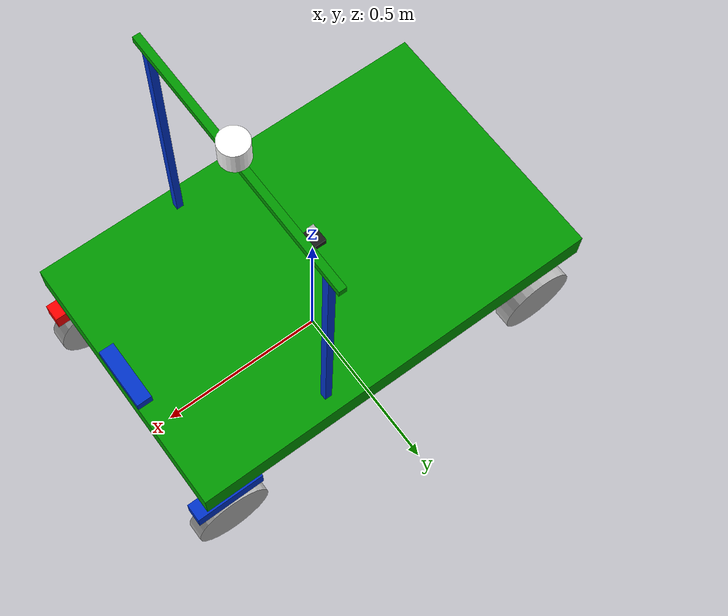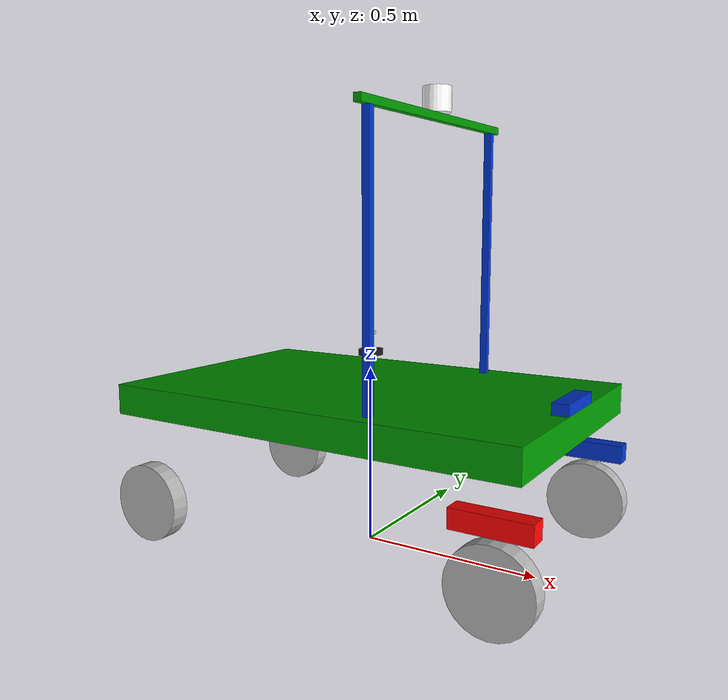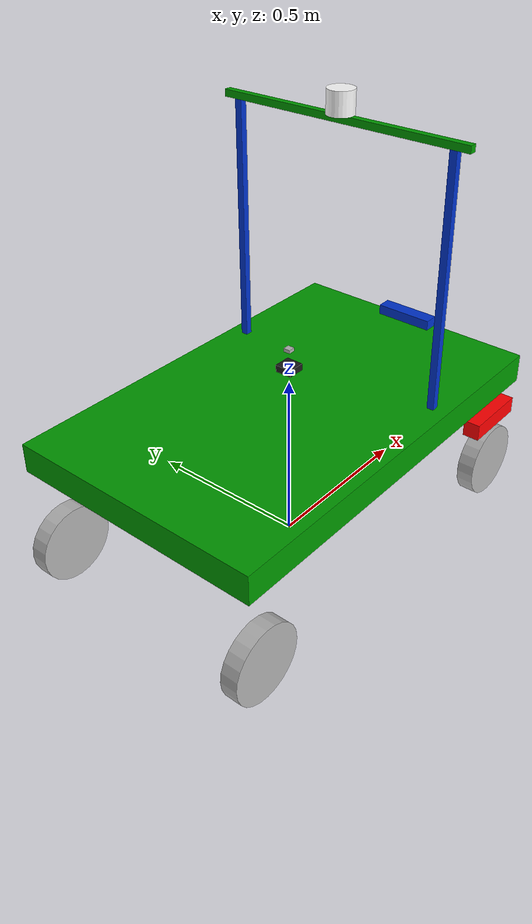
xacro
<?xml version="1.0"?>
<robot name="amr" xmlns:xacro="http://www.ros.org/wiki/xacro">
    <material name="grey">
        <color rgba="0.7 0.7 0.7 1" />
    </material>

    <material name="green">
        <color rgba="0 0.6 0 1" />
    </material>

    <material name="red">
        <color rgba="1 0 0 1" />
    </material>

    <material name="white">
        <color rgba="1 1 1 1" />
    </material>

    <material name="black">
        <color rgba="0.1 0.1 0.1 1" />
    </material>

    <material name="blue">
        <color rgba="0 0.2 0.8 1" />
    </material>

    <xacro:property name="robot_width" value="0.76"/>
    <xacro:property name="robot_length" value="1.2"/>
    <xacro:property name="robot_thickness" value="0.085"/>
    <xacro:property name="robot_base_mass" value="4.0"/>

    <xacro:property name="wheel_radius" value="0.11"/>
    <xacro:property name="wheel_length" value="0.05"/>
    <xacro:property name="wheel_mass" value="1.5"/>

    <xacro:property name="lidar_radius" value="0.0375"/>
    <xacro:property name="lidar_length" value="0.065"/>
    <xacro:property name="lidar_mass" value="0.23"/>

    <xacro:property name="zedcam_width" value="0.0431"/>
    <xacro:property name="zedcam_length" value="0.1753"/>
    <xacro:property name="zedcam_thickness" value="0.0303"/>
    <xacro:property name="zedcam_mass" value="0.23"/>

    <xacro:property name="lidar_arm_width" value="0.02"/>
    <xacro:property name="lidar_arm_length" value="0.02"/>
    <xacro:property name="lidar_arm_thickness" value="0.75"/>
    <xacro:property name="lidar_arm_mass" value="0.2"/>

    <xacro:property name="robot_base_midpoint" value="0.0425"/>
    <xacro:property name="robot_base_wheel_gap" value="0.145"/>
    <xacro:property name="wheel_gap_from_base_length" value="0.525"/> <!-- Wheel Base / 2 -->
    <xacro:property name="wheel_gap_from_base_width" value="0.34"/> <!-- Track Width / 2 -->

    <xacro:property name="steering_link_width" value="0.05"/>
    <xacro:property name="steering_link_length" value="0.2"/>
    <xacro:property name="steering_link_thickness" value="0.05"/>
    <xacro:property name="steering_link_mass" value="0.01"/>

    <link name="base_footprint" />

    <link name="base_link">
        <visual>
            <geometry>
                <box size="${robot_length} ${robot_width} ${robot_thickness}" />
            </geometry>
            <origin xyz="0 0 0" rpy="0 0 0" />
            <material name="green" />
        </visual>

        <collision>
            <geometry>
                <box size="${robot_length} ${robot_width} ${robot_thickness}" />
            </geometry>
            <origin xyz="0 0 0" rpy="0 0 0" />
        </collision>

        <inertial>
            <origin xyz="0 0 0" rpy="0 0 0" />
            <mass value="${robot_base_mass}" />
            <inertia
                ixx="${1/12 * robot_base_mass * (pow(robot_width, 2) + pow(robot_thickness, 2))}"
                iyy="${1/12 * robot_base_mass * (pow(robot_length, 2) + pow(robot_thickness, 2))}"
                izz="${1/12 * robot_base_mass * (pow(robot_width, 2) + pow(robot_length, 2))}"
                ixy="0"
                ixz="0"
                iyz="0"
            />
        </inertial>
    </link>

    <link name="lidar_arm_vert_left">
        <visual>
            <geometry>
                <box size="${lidar_arm_length} ${lidar_arm_width} ${lidar_arm_thickness}" />
            </geometry>
            <origin xyz="0 0 0" rpy="0 0 0" />
            <material name="blue" />
        </visual>

        <collision>
            <geometry>
                <box size="${lidar_arm_length} ${lidar_arm_width} ${lidar_arm_thickness}" />
            </geometry>
            <origin xyz="0 0 0" rpy="0 0 0" />
        </collision>

        <inertial>
            <origin xyz="0 0 0" rpy="0 0 0" />
            <mass value="${lidar_arm_mass}" />
            <inertia
                ixx="${1/12 * lidar_arm_mass * (pow(lidar_arm_width, 2) + pow(lidar_arm_thickness, 2))}"
                iyy="${1/12 * lidar_arm_mass * (pow(lidar_arm_length, 2) + pow(lidar_arm_thickness, 2))}"
                izz="${1/12 * lidar_arm_mass * (pow(lidar_arm_width, 2) + pow(lidar_arm_length, 2))}"
                ixy="0"
                ixz="0"
                iyz="0"
            />
        </inertial>
    </link>

    <link name="lidar_arm_vert_right">
        <visual>
            <geometry>
                <box size="${lidar_arm_width} ${lidar_arm_length} ${lidar_arm_thickness}" />
            </geometry>
            <origin xyz="0 0 0" rpy="0 0 0" />
            <material name="blue" />
        </visual>

        <collision>
            <geometry>
                <box size="${lidar_arm_width} ${lidar_arm_length} ${lidar_arm_thickness}" />
            </geometry>
            <origin xyz="0 0 0" rpy="0 0 0" />
        </collision>

        <inertial>
            <origin xyz="0 0 0" rpy="0 0 0" />
            <mass value="${lidar_arm_mass}" />
            <inertia
                ixx="${1/12 * lidar_arm_mass * (pow(lidar_arm_width, 2) + pow(lidar_arm_thickness, 2))}"
                iyy="${1/12 * lidar_arm_mass * (pow(lidar_arm_length, 2) + pow(lidar_arm_thickness, 2))}"
                izz="${1/12 * lidar_arm_mass * (pow(lidar_arm_width, 2) + pow(lidar_arm_length, 2))}"
                ixy="0"
                ixz="0"
                iyz="0"
            />
        </inertial>
    </link>

    <link name="lidar_arm_hori">
        <visual>
            <geometry>
                <box size="${lidar_arm_width} ${lidar_arm_thickness} ${lidar_arm_length}" />
            </geometry>
            <origin xyz="0 0 0" rpy="0 0 0" />
            <material name="green" />
        </visual>

        <collision>
            <geometry>
                <box size="${lidar_arm_width} ${lidar_arm_thickness} ${lidar_arm_length}" />
            </geometry>
            <origin xyz="0 0 0" rpy="0 0 0" />
        </collision>

        <inertial>
            <origin xyz="0 0 0" rpy="0 0 0" />
            <mass value="${lidar_arm_mass}" />
            <inertia
                ixx="${1/12 * lidar_arm_mass * (pow(lidar_arm_width, 2) + pow(lidar_arm_thickness, 2))}"
                iyy="${1/12 * lidar_arm_mass * (pow(lidar_arm_length, 2) + pow(lidar_arm_thickness, 2))}"
                izz="${1/12 * lidar_arm_mass * (pow(lidar_arm_width, 2) + pow(lidar_arm_length, 2))}"
                ixy="0"
                ixz="0"
                iyz="0"
            />
        </inertial>
    </link>

    <link name="lidar_3d">
        <visual>
            <geometry>
                <cylinder radius="${lidar_radius}" length="${lidar_length}" />
            </geometry>
            <origin xyz="0 0 0" rpy="0 0 0" />
            <material name="white" />
        </visual>

        <collision>
            <geometry>
                <cylinder radius="${lidar_radius}" length="${lidar_length}" />
            </geometry>
            <origin xyz="0 0 0" rpy="0 0 0" />
        </collision>

        <inertial>
            <origin xyz="0 0 0" rpy="0 0 0" />
            <mass value="${lidar_mass}" />
            <!-- Cylinder inertia -->
            <inertia
                ixx="${1/12 * lidar_mass * (3*pow(lidar_radius, 2) + pow(lidar_length, 2))}"
                iyy="${1/12 * lidar_mass * (3*pow(lidar_radius, 2) + pow(lidar_length, 2))}"
                izz="${1/2 * lidar_mass * pow(lidar_radius, 2)}"
                ixy="0"
                ixz="0"
                iyz="0"
            />
        </inertial>
    </link>

    <link name="camera_link">
        <visual>
            <geometry>
                <box size="${zedcam_width} ${zedcam_length} ${zedcam_thickness}" />
            </geometry>
            <origin xyz="0 0 0" rpy="0 0 0" />
            <material name="blue" />
        </visual>

        <collision>
            <geometry>
                <box size="${zedcam_width} ${zedcam_length} ${zedcam_thickness}" />
            </geometry>
            <origin xyz="0 0 0" rpy="0 0 0" />
        </collision>

        <inertial>
            <origin xyz="0 0 0" rpy="0 0 0" />
            <mass value="${zedcam_mass}" />
            <inertia
                ixx="${1/12 * zedcam_mass * (pow(zedcam_length, 2) + pow(zedcam_thickness, 2))}"
                iyy="${1/12 * zedcam_mass * (pow(zedcam_width, 2) + pow(zedcam_thickness, 2))}"
                izz="${1/12 * zedcam_mass * (pow(zedcam_width, 2) + pow(zedcam_length, 2))}"
                ixy="0"
                ixz="0"
                iyz="0"
            />
        </inertial>
    </link>

    <link name="camera_depth_frame" />

    <link name="imu_link">
        <visual>
            <geometry>
                <box size="0.02 0.02 0.01" />
            </geometry>
            <origin xyz="0 0 0" rpy="0 0 0" />
            <material name="grey" />
        </visual>

        <collision>
            <geometry>
                <box size="0.02 0.02 0.01" />
            </geometry>
            <origin xyz="0 0 0" rpy="0 0 0" />
        </collision>

        <inertial>
            <origin xyz="0 0 0" rpy="0 0 0" />
            <mass value="0.05" />
            <inertia
                ixx="0.0000020833"
                iyy="0.0000020833"
                izz="0.000003333"
                ixy="0"
                ixz="0"
                iyz="0"
            />
        </inertial>
    </link>

    <link name="navsat_link">
        <visual>
            <geometry>
                <box size="0.05 0.05 0.02" />
            </geometry>
            <origin xyz="0 0 0" rpy="0 0 0" />
            <material name="black" />
        </visual>

        <collision>
            <geometry>
                <box size="0.05 0.05 0.02" />
            </geometry>
            <origin xyz="0 0 0" rpy="0 0 0" />
        </collision>

        <inertial>
            <origin xyz="0 0 0" rpy="0 0 0" />
            <mass value="0.05" />
            <inertia
                ixx="0.000012083"
                iyy="0.000012083"
                izz="0.000020833"
                ixy="0"
                ixz="0"
                iyz="0"
            />
        </inertial>
    </link>

    <link name="front_left_wheel">
        <visual>
            <geometry>
                <cylinder radius="${wheel_radius}" length="${wheel_length}" />
            </geometry>
            <origin xyz="0 0 0" rpy="1.57 0 0" />
            <material name="grey" />
        </visual>

        <collision>
            <geometry>
                <cylinder radius="${wheel_radius}" length="${wheel_length}" />
            </geometry>
            <origin xyz="0 0 0" rpy="1.57 0 0" />
        </collision>

        <inertial>
            <origin xyz="0 0 0" rpy="1.57 0 0" />
            <mass value="${wheel_mass}" />
            <inertia
                ixx="${1/12 * wheel_mass * (3*pow(wheel_radius, 2) + pow(wheel_length, 2))}"
                iyy="${1/12 * wheel_mass * (3*pow(wheel_radius, 2) + pow(wheel_length, 2))}"
                izz="${1/2 * wheel_mass * pow(wheel_radius, 2)}"
                ixy="0"
                ixz="0"
                iyz="0"
            />
        </inertial>
    </link>

    <link name="back_left_wheel">
        <visual>
            <geometry>
                <cylinder radius="${wheel_radius}" length="${wheel_length}" />
            </geometry>
            <origin xyz="0 0 0" rpy="1.57 0 0" />
            <material name="grey" />
        </visual>

        <collision>
            <geometry>
                <cylinder radius="${wheel_radius}" length="${wheel_length}" />
            </geometry>
            <origin xyz="0 0 0" rpy="1.57 0 0" />
        </collision>

        <inertial>
            <origin xyz="0 0 0" rpy="1.57 0 0" />
            <mass value="${wheel_mass}" />
            <inertia
                ixx="${1/12 * wheel_mass * (3*pow(wheel_radius, 2) + pow(wheel_length, 2))}"
                iyy="${1/12 * wheel_mass * (3*pow(wheel_radius, 2) + pow(wheel_length, 2))}"
                izz="${1/2 * wheel_mass * pow(wheel_radius, 2)}"
                ixy="0"
                ixz="0"
                iyz="0"
            />
        </inertial>
    </link>

    <link name="front_right_wheel">
        <visual>
            <geometry>
                <cylinder radius="${wheel_radius}" length="${wheel_length}" />
            </geometry>
            <origin xyz="0 0 0" rpy="1.57 0 0" />
            <material name="grey" />
        </visual>

        <collision>
            <geometry>
                <cylinder radius="${wheel_radius}" length="${wheel_length}" />
            </geometry>
            <origin xyz="0 0 0" rpy="1.57 0 0" />
        </collision>

        <inertial>
            <origin xyz="0 0 0" rpy="1.57 0 0" />
            <mass value="${wheel_mass}" />
            <inertia
                ixx="${1/12 * wheel_mass * (3*pow(wheel_radius, 2) + pow(wheel_length, 2))}"
                iyy="${1/12 * wheel_mass * (3*pow(wheel_radius, 2) + pow(wheel_length, 2))}"
                izz="${1/2 * wheel_mass * pow(wheel_radius, 2)}"
                ixy="0"
                ixz="0"
                iyz="0"
            />
        </inertial>
    </link>

    <link name="back_right_wheel">
        <visual>
            <geometry>
                <cylinder radius="${wheel_radius}" length="${wheel_length}" />
            </geometry>
            <origin xyz="0 0 0" rpy="1.57 0 0" />
            <material name="grey" />
        </visual>

        <collision>
            <geometry>
                <cylinder radius="${wheel_radius}" length="${wheel_length}" />
            </geometry>
            <origin xyz="0 0 0" rpy="1.57 0 0" />
        </collision>

        <inertial>
            <origin xyz="0 0 0" rpy="1.57 0 0" />
            <mass value="${wheel_mass}" />
            <inertia
                ixx="${1/12 * wheel_mass * (3*pow(wheel_radius, 2) + pow(wheel_length, 2))}"
                iyy="${1/12 * wheel_mass * (3*pow(wheel_radius, 2) + pow(wheel_length, 2))}"
                izz="${1/2 * wheel_mass * pow(wheel_radius, 2)}"
                ixy="0"
                ixz="0"
                iyz="0"
            />
        </inertial>
    </link>

    <link name="front_left_steering_link">
        <visual>
            <geometry>
                <box size="${steering_link_length} ${steering_link_width} ${steering_link_thickness}" />
            </geometry>
            <origin xyz="0 0 0.15" rpy="0 0 0" />
            <material name="blue" />
        </visual>

        <collision>
            <geometry>
                <box size="${steering_link_length} ${steering_link_width} ${steering_link_thickness}" />
            </geometry>
            <origin xyz="0 0 0.15" rpy="0 0 0" />
        </collision>

        <inertial>
            <origin xyz="0 0 0.15" rpy="0 0 0" />
            <mass value="${steering_link_mass}" />
            <inertia
                ixx="${1/12 * steering_link_mass * (pow(steering_link_width, 2) + pow(steering_link_thickness, 2))}"
                iyy="${1/12 * steering_link_mass * (pow(steering_link_length, 2) + pow(steering_link_thickness, 2))}"
                izz="${1/12 * steering_link_mass * (pow(steering_link_width, 2) + pow(steering_link_length, 2))}"
                ixy="0"
                ixz="0"
                iyz="0"
            />
        </inertial>
    </link>

    <link name="front_right_steering_link">
        <visual>
            <geometry>
                <box size="${steering_link_length} ${steering_link_width} ${steering_link_thickness}" />
            </geometry>
            <origin xyz="0 0 0.15" rpy="0 0 0" />
            <material name="red" />
        </visual>

        <collision>
            <geometry>
                <box size="${steering_link_length} ${steering_link_width} ${steering_link_thickness}" />
            </geometry>
            <origin xyz="0 0 0.15" rpy="0 0 0" />
        </collision>

        <inertial>
            <origin xyz="0 0 0.15" rpy="0 0 0" />
            <mass value="${steering_link_mass}" />
            <inertia
                ixx="${1/12 * steering_link_mass * (pow(steering_link_width, 2) + pow(steering_link_thickness, 2))}"
                iyy="${1/12 * steering_link_mass * (pow(steering_link_length, 2) + pow(steering_link_thickness, 2))}"
                izz="${1/12 * steering_link_mass * (pow(steering_link_width, 2) + pow(steering_link_length, 2))}"
                ixy="0"
                ixz="0"
                iyz="0"
            />
        </inertial>
    </link>

    <joint name="base_joint" type="fixed">
        <parent link="base_footprint" />
        <child link="base_link" />
        <origin xyz="0 0 0.4125" rpy="0 0 0" />
    </joint>

    <joint name="base_lidar_arm_vert_left_joint" type="fixed">
        <parent link="base_link" />
        <child link="lidar_arm_vert_left" />
        <origin xyz="${robot_length / 6} 0.33 ${lidar_arm_thickness / 2}" rpy="0 0 0" />
    </joint>

    <joint name="base_lidar_arm_vert_right_joint" type="fixed">
        <parent link="base_link" />
        <child link="lidar_arm_vert_right" />
        <origin xyz="${robot_length / 6} -0.33 ${lidar_arm_thickness / 2}" rpy="0 0 0" />
    </joint>

    <joint name="base_lidar_arm_hori_joint" type="fixed">
        <parent link="base_link" />
        <child link="lidar_arm_hori" />
        <origin xyz="${robot_length / 6} 0 ${lidar_arm_thickness + lidar_arm_width/2}" rpy="0 0 0" />
    </joint>

    <joint name="lidar_arm_hori_lidar_3d_joint" type="fixed">
        <parent link="lidar_arm_hori" />
        <child link="lidar_3d" />
        <origin xyz="0 0 ${lidar_length / 2 + lidar_arm_width / 2}" rpy="0 0 0" />
    </joint>

    <joint name="camera_joint" type="fixed">
        <parent link="base_link" />
        <child link="camera_link" />
        <origin xyz="${robot_length / 2 - zedcam_width / 2} 0 ${(robot_thickness / 2) + (zedcam_thickness / 2)}" rpy="0 0 0" />
    </joint>

    <joint name="camera_depth_joint" type="fixed">
        <parent link="camera_link" />
        <child link="camera_depth_frame" />
        <origin xyz="0 0 0" rpy="-1.5708 0 -1.5708"/>
    </joint>

    <joint name="imu_joint" type="fixed">
        <parent link="base_link" />
        <child link="imu_link" />
        <origin xyz="0 0 0.19" rpy="0 0 0" />
    </joint>

    <joint name="navsat_joint" type="fixed">
        <parent link="base_link" />
        <child link="navsat_link" />
        <origin xyz="0.0 0 0.135" rpy="0 0 0" />
    </joint>

    <joint name="base_front_left_steering_joint" type="revolute">
        <parent link="base_link"/>
        <child link="front_left_steering_link"/>
        <origin xyz="${wheel_gap_from_base_length} ${wheel_gap_from_base_width} -${robot_base_midpoint + robot_base_wheel_gap + wheel_radius}" rpy="0 0 0" />
        <axis xyz="0 0 1"/>
        <limit lower="-0.5" upper="0.5" effort="10" velocity="1.0"/>
    </joint>

    <joint name="base_front_left_wheel_joint" type="continuous">
        <parent link="front_left_steering_link"/>
        <child link="front_left_wheel"/>
        <origin xyz="0 0 0" rpy="0 0 0"/>
        <axis xyz="0 1 0"/>
    </joint>

    <!-- Steering knuckle joint (this is what the plugin actuates to steer) -->
    <joint name="base_front_right_steering_joint" type="revolute">
        <parent link="base_link"/>
        <child link="front_right_steering_link"/>
        <origin xyz="${wheel_gap_from_base_length} -${wheel_gap_from_base_width} -${robot_base_midpoint + robot_base_wheel_gap + wheel_radius}" rpy="0 0 0" />
        <axis xyz="0 0 1"/>
        <limit lower="-0.5" upper="0.5" effort="10" velocity="1.0"/>
    </joint>

    <!-- Wheel spin joint, child of the steering link -->
    <joint name="base_front_right_wheel_joint" type="continuous">
        <parent link="front_right_steering_link"/>
        <child link="front_right_wheel"/>
        <origin xyz="0 0 0" rpy="0 0 0"/>
        <axis xyz="0 1 0"/>
    </joint>

    <joint name="base_back_left_wheel_joint" type="continuous">
        <parent link="base_link" />
        <child link="back_left_wheel" />
        <origin xyz="-${wheel_gap_from_base_length} ${wheel_gap_from_base_width} -${robot_base_midpoint + robot_base_wheel_gap + wheel_radius}" rpy="0 0 0" />
        <axis xyz="0 1 0" />
        <dynamics damping="1.0" friction="0.1"/>
    </joint>

    <joint name="base_back_right_wheel_joint" type="continuous">
        <parent link="base_link" />
        <child link="back_right_wheel" />
        <origin xyz="-${wheel_gap_from_base_length} -${wheel_gap_from_base_width} -${robot_base_midpoint + robot_base_wheel_gap + wheel_radius}" rpy="0 0 0" />
        <axis xyz="0 1 0" />
        <dynamics damping="1.0" friction="0.1"/>
    </joint>

    <gazebo reference="base_link">
        <material>Gazebo/Green</material>
    </gazebo>

    <gazebo reference="lidar_3d">
        <material>Gazebo/White</material>
    </gazebo>

    <gazebo reference="camera_link">
        <material>Gazebo/Black</material>
    </gazebo>

    <gazebo reference="imu_link">
        <material>Gazebo/Grey</material>
    </gazebo>

    <gazebo reference="navsat_link">
        <material>Gazebo/Black</material>
    </gazebo>

    <gazebo reference="lidar_3d">
        <sensor name="lidar_3d_sensor" type="gpu_lidar">
            <topic>lidar_3d</topic>
            <update_rate>30</update_rate>
            <gz_frame_id>lidar_3d</gz_frame_id>
            <lidar>
                <scan>
                    <horizontal>
                        <samples>180</samples>
                        <resolution>1</resolution>
                        <min_angle>-3.14</min_angle>
                        <max_angle>3.14</max_angle>
                    </horizontal>
                    <vertical>
                        <samples>32</samples>
                        <resolution>1</resolution>
                        <min_angle>-0.26</min_angle>
                        <max_angle>0.26</max_angle>
                    </vertical>
                </scan>
                <range>
                     <min>0.05</min>
                    <max>20.0</max>
                </range>
            </lidar>
            <always_on>true</always_on>
        </sensor>
    </gazebo>

    <gazebo reference="camera_link">
        <sensor name="depth_camera" type="rgbd_camera">
            <update_rate>15</update_rate>
            <topic>camera</topic>
            <gz_frame_id>camera_link</gz_frame_id>
            <camera>
                <horizontal_fov>1.5708</horizontal_fov>
                <image>
                    <width>640</width>
                    <height>480</height>
                    <format>R8G8B8</format>
                </image>
                <clip>
                    <near>0.1</near>
                    <far>6.0</far>
                </clip>
                <depth_camera>
                    <clip>
                        <near>0.1</near>
                        <far>6.0</far>
                    </clip>
                </depth_camera>
            </camera>
            <always_on>1</always_on>
            <visualize>true</visualize>
        </sensor>
    </gazebo>

    <gazebo reference="imu_link">
        <sensor name="imu_sensor" type="imu">
            <update_rate>50</update_rate>
            <topic>imu</topic>
            <gz_frame_id>imu_link</gz_frame_id>
            <always_on>1</always_on>
            <imu>
                <orientation_reference_frame>
                    <localization>ENU</localization>
                </orientation_reference_frame>
                <angular_velocity>
                    <x><noise type="gaussian"><mean>0.0</mean><stddev>2e-4</stddev></noise></x>
                    <y><noise type="gaussian"><mean>0.0</mean><stddev>2e-4</stddev></noise></y>
                    <z><noise type="gaussian"><mean>0.0</mean><stddev>2e-4</stddev></noise></z>
                </angular_velocity>
                <linear_acceleration>
                    <x><noise type="gaussian"><mean>0.0</mean><stddev>1.7e-2</stddev></noise></x>
                    <y><noise type="gaussian"><mean>0.0</mean><stddev>1.7e-2</stddev></noise></y>
                    <z><noise type="gaussian"><mean>0.0</mean><stddev>1.7e-2</stddev></noise></z>
                </linear_acceleration>
            </imu>
        </sensor>
    </gazebo>

    <gazebo reference="navsat_link">
        <sensor name="navsat" type="navsat">
            <always_on>1</always_on>
            <update_rate>10</update_rate>
            <topic>navsat</topic>
            <gz_frame_id>navsat_link</gz_frame_id>
        </sensor>
    </gazebo>

    <gazebo>
        <plugin filename="gz-sim-ackermann-steering-system" name="gz::sim::systems::AckermannSteering">
            <left_steering_joint>base_front_left_steering_joint</left_steering_joint>
            <right_steering_joint>base_front_right_steering_joint</right_steering_joint>

            <left_joint>base_back_left_wheel_joint</left_joint>
            <right_joint>base_back_right_wheel_joint</right_joint>

            <wheel_separation>${wheel_gap_from_base_width * 2}</wheel_separation>   <!-- track width  -->
            <wheel_base>${wheel_gap_from_base_length * 2}</wheel_base>
            <wheel_radius>${wheel_radius}</wheel_radius>

            <steering_limit>0.7854</steering_limit>  <!-- radians -->

            <topic>cmd_vel</topic>
            <odom_topic>odom_uncorrected</odom_topic>
            <frame_id>odom</frame_id>
            <child_frame_id>base_footprint</child_frame_id>

            <odom_publish_frequency>50</odom_publish_frequency>
        </plugin>
    </gazebo>

    <gazebo reference="base_front_left_steering_joint">
        <implicitSpringDamper>1</implicitSpringDamper>
    </gazebo>

    <gazebo reference="base_front_right_steering_joint">
        <implicitSpringDamper>1</implicitSpringDamper>
    </gazebo>

    <gazebo reference="front_left_wheel">
        <mu1>1.0</mu1>
        <mu2>1.0</mu2>
    </gazebo>

    <gazebo reference="front_right_wheel">
        <mu1>1.0</mu1>
        <mu2>1.0</mu2>
    </gazebo>

    <gazebo reference="back_left_wheel">
        <mu1>1.0</mu1>
        <mu2>1.0</mu2>
    </gazebo>

    <gazebo reference="back_right_wheel">
        <mu1>1.0</mu1>
        <mu2>1.0</mu2>
    </gazebo>
</robot>
